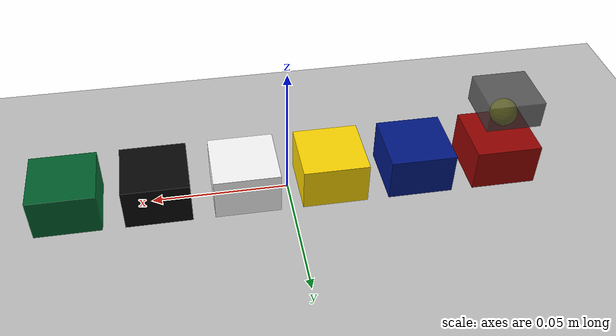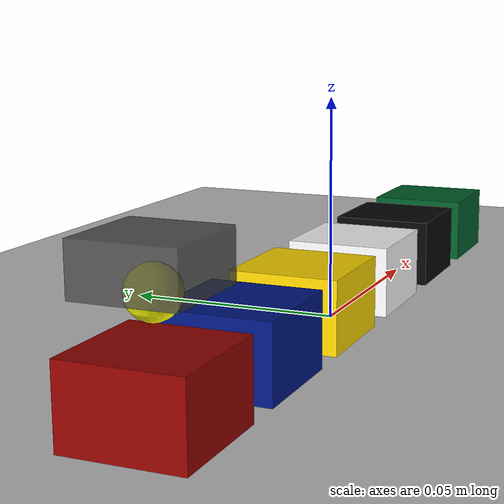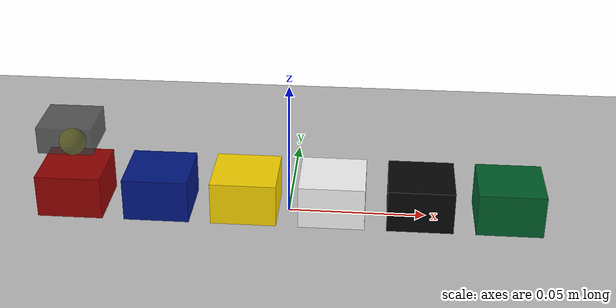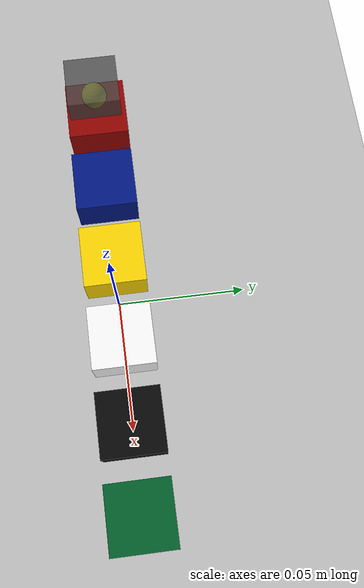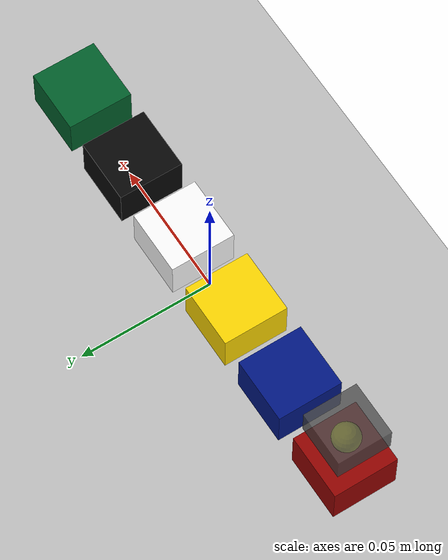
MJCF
<mujoco model="test_color_sensor">

  <compiler angle="degree" meshdir="meshes/"/>
  <option timestep="0.002" gravity="0 0 -9.81"/>

  <visual>
    <headlight diffuse="0.8 0.8 0.8" ambient="0.4 0.4 0.4" specular="0.1 0.1 0.1"/>
  </visual>

  <asset>
    <!-- 床のテクスチャ -->
    <texture name="grid" type="2d" builtin="checker"
             width="512" height="512"
             rgb1="0.7 0.7 0.7" rgb2="0.8 0.8 0.8"/>
    <material name="grid_mat" texture="grid" texrepeat="4 4"/>
  </asset>

  <worldbody>
    <light name="light_top" pos="0 0 1.0" dir="0 0 -1"
           diffuse="0.8 0.8 0.8" specular="0.1 0.1 0.1" directional="true"/>

    <geom name="floor" type="plane" size="0.5 0.5 0.01"
          material="grid_mat" contype="1" conaffinity="1"/>

    <!-- ────────────────────────────────────────────────
         色ブロック（床の上に固定配置）
         高さ: 0.0096m（1.2ポッチ）
         幅:   0.032m（4ポッチ）間隔
    ──────────────────────────────────────────────── -->

    <!-- 赤ブロック (LEGO 4 Red: 0.578, 0.010, 0.002) -->
    <geom name="block_red" type="box"
          pos="-0.080 0 0.008" size="0.012 0.012 0.008"
          rgba="0.578 0.010 0.002 1"
          contype="0" conaffinity="0"/>

    <!-- 青ブロック (LEGO 1 Blue: 0.000, 0.089, 0.515) -->
    <geom name="block_blue" type="box"
          pos="-0.048 0 0.008" size="0.012 0.012 0.008"
          rgba="0.000 0.089 0.515 1"
          contype="0" conaffinity="0"/>

    <!-- 黄ブロック (LEGO 14 Yellow: 0.992, 0.843, 0.000) -->
    <geom name="block_yellow" type="box"
          pos="-0.016 0 0.008" size="0.012 0.012 0.008"
          rgba="0.992 0.843 0.000 1"
          contype="0" conaffinity="0"/>

    <!-- 白ブロック (LEGO 15 White: 0.991, 0.991, 0.991) -->
    <geom name="block_white" type="box"
          pos="0.016 0 0.008" size="0.012 0.012 0.008"
          rgba="0.991 0.991 0.991 1"
          contype="0" conaffinity="0"/>

    <!-- 黒ブロック (LEGO 26 Black: 0.027, 0.027, 0.027) -->
    <geom name="block_black" type="box"
          pos="0.048 0 0.008" size="0.012 0.012 0.008"
          rgba="0.027 0.027 0.027 1"
          contype="0" conaffinity="0"/>

    <!-- 緑ブロック (LEGO 6 Green: 0.000, 0.373, 0.165) -->
    <geom name="block_green" type="box"
          pos="0.080 0 0.008" size="0.012 0.012 0.008"
          rgba="0.000 0.373 0.165 1"
          contype="0" conaffinity="0"/>

    <!-- ────────────────────────────────────────────────
         カラーセンサー本体
         スライダージョイントでX方向に移動
         初期位置: 赤ブロックの上
    ──────────────────────────────────────────────── -->
    <body name="color_sensor_body" pos="-0.080 0 0.030">
      <joint name="sensor_slide" type="slide" axis="1 0 0"
             range="-0.010 0.170" damping="10.0"/>
      <inertial pos="0 0 0" mass="0.01" diaginertia="0.0001 0.0001 0.0001"/>

      <!-- センサー本体（視覚化用） -->
      <geom name="sensor_body_geom" type="box"
            pos="0 0 0" size="0.010 0.010 0.005"
            rgba="0.3 0.3 0.3 0.8"
            contype="0" conaffinity="0"/>

      <!-- 検出点（真下を向く） -->
      <site name="color_site" pos="0 0 -0.005"
            size="0.005" rgba="1 1 0 1"/>
      <!-- リンクするためのタグ -->
      <camera name="color_camera"
            mode="fixed"
            pos="0 0 -0.005"
            xyaxes="1 0 0  0 1 0"/>
    </body>

  </worldbody>

  <!-- スライダーアクチュエーター -->
  <actuator>
    <position name="sensor_slide_ctrl" joint="sensor_slide"
              kp="100" ctrllimited="true" ctrlrange="-0.010 0.170"/>
  </actuator>

  <!-- センサー位置センサー -->
  <sensor>
    <jointpos name="sensor_position" joint="sensor_slide"/>
    <framepos name="color_site_pos" objtype="site" objname="color_site"/>
  </sensor>

</mujoco>
